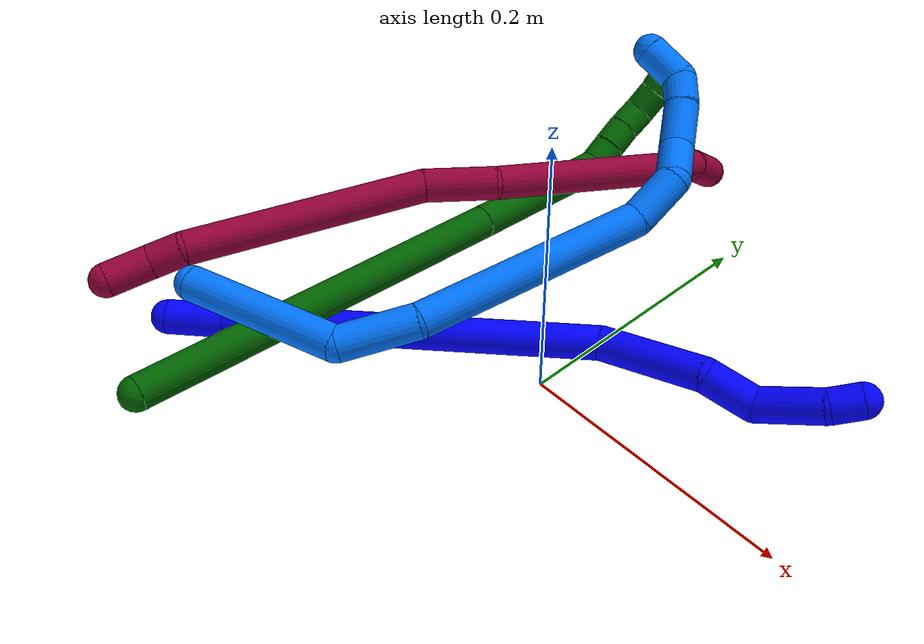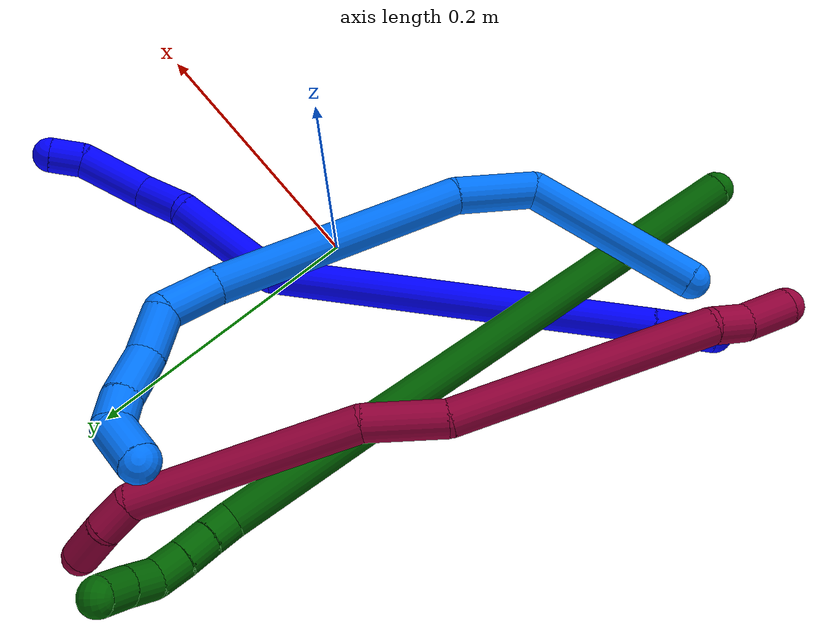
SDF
<sdf version="1.7">
 <world name="default">
  <model name="1">
   <static>0</static>
   <link name="1">
    <collision name="collision-cylinder-e_1_1_4">
     <pose>0.015883 0.01337 -0.003954 -1.85834 0.850367 -1.08979</pose>
     <geometry><cylinder><radius>0.0125</radius><length>0.04227</length></cylinder></geometry>
     <surface>
      <friction><ode><mu>1.16</mu><mu2>1.16</mu2><slip1>0</slip1><slip2>0</slip2></ode></friction>
      <contact><ode><kp>1e+06</kp><kd>1</kd><max_vel>0</max_vel><min_depth>0.001</min_depth></ode></contact>
     </surface>
    </collision>
    <visual name="visual-cylinder-e_1_1_4">
     <pose>0.015883 0.01337 -0.003954 -1.85834 0.850367 -1.08979</pose>
     <geometry><cylinder><radius>0.0125</radius><length>0.04227</length></cylinder></geometry>
     <material><ambient>0 0 1 1</ambient></material>
    </visual>
    <collision name="collision-cylinder-e_2_4_5">
     <pose>0.131391 0.112843 -0.034038 -1.86543 0.836222 -1.07959</pose>
     <geometry><cylinder><radius>0.0125</radius><length>0.268488</length></cylinder></geometry>
     <surface>
      <friction><ode><mu>1.16</mu><mu2>1.16</mu2><slip1>0</slip1><slip2>0</slip2></ode></friction>
      <contact><ode><kp>1e+06</kp><kd>1</kd><max_vel>0</max_vel><min_depth>0.001</min_depth></ode></contact>
     </surface>
    </collision>
    <visual name="visual-cylinder-e_2_4_5">
     <pose>0.131391 0.112843 -0.034038 -1.86543 0.836222 -1.07959</pose>
     <geometry><cylinder><radius>0.0125</radius><length>0.268488</length></cylinder></geometry>
     <material><ambient>0 0 1 1</ambient></material>
    </visual>
    <collision name="collision-cylinder-e_3_5_6">
     <pose>0.268556 0.211494 -0.055186 -1.19291 1.22556 -0.890714</pose>
     <geometry><cylinder><radius>0.0125</radius><length>0.079787</length></cylinder></geometry>
     <surface>
      <friction><ode><mu>1.16</mu><mu2>1.16</mu2><slip1>0</slip1><slip2>0</slip2></ode></friction>
      <contact><ode><kp>1e+06</kp><kd>1</kd><max_vel>0</max_vel><min_depth>0.001</min_depth></ode></contact>
     </surface>
    </collision>
    <visual name="visual-cylinder-e_3_5_6">
     <pose>0.268556 0.211494 -0.055186 -1.19291 1.22556 -0.890714</pose>
     <geometry><cylinder><radius>0.0125</radius><length>0.079787</length></cylinder></geometry>
     <material><ambient>0 0 1 1</ambient></material>
    </visual>
    <collision name="collision-cylinder-e_4_6_7">
     <pose>0.323774 0.227932 -0.055913 -2.54351 1.19831 -2.2935</pose>
     <geometry><cylinder><radius>0.0125</radius><length>0.03796</length></cylinder></geometry>
     <surface>
      <friction><ode><mu>1.16</mu><mu2>1.16</mu2><slip1>0</slip1><slip2>0</slip2></ode></friction>
      <contact><ode><kp>1e+06</kp><kd>1</kd><max_vel>0</max_vel><min_depth>0.001</min_depth></ode></contact>
     </surface>
    </collision>
    <visual name="visual-cylinder-e_4_6_7">
     <pose>0.323774 0.227932 -0.055913 -2.54351 1.19831 -2.2935</pose>
     <geometry><cylinder><radius>0.0125</radius><length>0.03796</length></cylinder></geometry>
     <material><ambient>0 0 1 1</ambient></material>
    </visual>
    <collision name="collision-cylinder-e_5_7_8">
     <pose>0.361275 0.24506 -0.056779 -1.22013 0.952658 -0.692277</pose>
     <geometry><cylinder><radius>0.0125</radius><length>0.048649</length></cylinder></geometry>
     <surface>
      <friction><ode><mu>1.16</mu><mu2>1.16</mu2><slip1>0</slip1><slip2>0</slip2></ode></friction>
      <contact><ode><kp>1e+06</kp><kd>1</kd><max_vel>0</max_vel><min_depth>0.001</min_depth></ode></contact>
     </surface>
    </collision>
    <visual name="visual-cylinder-e_5_7_8">
     <pose>0.361275 0.24506 -0.056779 -1.22013 0.952658 -0.692277</pose>
     <geometry><cylinder><radius>0.0125</radius><length>0.048649</length></cylinder></geometry>
     <material><ambient>0 0 1 1</ambient></material>
    </visual>
    <collision name="collision-cylinder-e_6_8_2">
     <pose>0.388425 0.267062 -0.051821 -1.55765 0.696239 -0.687853</pose>
     <geometry><cylinder><radius>0.0125</radius><length>0.022846</length></cylinder></geometry>
     <surface>
      <friction><ode><mu>1.16</mu><mu2>1.16</mu2><slip1>0</slip1><slip2>0</slip2></ode></friction>
      <contact><ode><kp>1e+06</kp><kd>1</kd><max_vel>0</max_vel><min_depth>0.001</min_depth></ode></contact>
     </surface>
    </collision>
    <visual name="visual-cylinder-e_6_8_2">
     <pose>0.388425 0.267062 -0.051821 -1.55765 0.696239 -0.687853</pose>
     <geometry><cylinder><radius>0.0125</radius><length>0.022846</length></cylinder></geometry>
     <material><ambient>0 0 1 1</ambient></material>
    </visual>
    <collision name="collision-sphere-2">
     <pose>0.395751 0.275826 -0.051706 0 -0 0</pose>
     <geometry><sphere><radius>0.0125</radius></sphere></geometry>
     <surface>
      <friction><ode><mu>1.16</mu><mu2>1.16</mu2><slip1>0</slip1><slip2>0</slip2></ode></friction>
      <contact><ode><kp>1e+06</kp><kd>1</kd><max_vel>0</max_vel><min_depth>0.001</min_depth></ode></contact>
     </surface>
    </collision>
    <visual name="visual-sphere-2">
     <pose>0.395751 0.275826 -0.051706 0 -0 0</pose>
     <geometry><sphere><radius>0.0125</radius></sphere></geometry>
     <material><ambient>0 0 1 1</ambient></material>
    </visual>
    <collision name="collision-sphere-4">
     <pose>0.031767 0.026741 -0.007908 0 -0 0</pose>
     <geometry><sphere><radius>0.0125</radius></sphere></geometry>
     <surface>
      <friction><ode><mu>1.16</mu><mu2>1.16</mu2><slip1>0</slip1><slip2>0</slip2></ode></friction>
      <contact><ode><kp>1e+06</kp><kd>1</kd><max_vel>0</max_vel><min_depth>0.001</min_depth></ode></contact>
     </surface>
    </collision>
    <visual name="visual-sphere-4">
     <pose>0.031767 0.026741 -0.007908 0 -0 0</pose>
     <geometry><sphere><radius>0.0125</radius></sphere></geometry>
     <material><ambient>0 0 1 1</ambient></material>
    </visual>
    <collision name="collision-sphere-1">
     <geometry><sphere><radius>0.0125</radius></sphere></geometry>
     <surface>
      <friction><ode><mu>1.16</mu><mu2>1.16</mu2><slip1>0</slip1><slip2>0</slip2></ode></friction>
      <contact><ode><kp>1e+06</kp><kd>1</kd><max_vel>0</max_vel><min_depth>0.001</min_depth></ode></contact>
     </surface>
    </collision>
    <visual name="visual-sphere-1">
     <geometry><sphere><radius>0.0125</radius></sphere></geometry>
     <material><ambient>0 0 1 1</ambient></material>
    </visual>
    <collision name="collision-sphere-8">
     <pose>0.381099 0.258298 -0.051936 0 -0 0</pose>
     <geometry><sphere><radius>0.0125</radius></sphere></geometry>
     <surface>
      <friction><ode><mu>1.16</mu><mu2>1.16</mu2><slip1>0</slip1><slip2>0</slip2></ode></friction>
      <contact><ode><kp>1e+06</kp><kd>1</kd><max_vel>0</max_vel><min_depth>0.001</min_depth></ode></contact>
     </surface>
    </collision>
    <visual name="visual-sphere-8">
     <pose>0.381099 0.258298 -0.051936 0 -0 0</pose>
     <geometry><sphere><radius>0.0125</radius></sphere></geometry>
     <material><ambient>0 0 1 1</ambient></material>
    </visual>
    <collision name="collision-sphere-5">
     <pose>0.231016 0.198946 -0.060167 0 -0 0</pose>
     <geometry><sphere><radius>0.0125</radius></sphere></geometry>
     <surface>
      <friction><ode><mu>1.16</mu><mu2>1.16</mu2><slip1>0</slip1><slip2>0</slip2></ode></friction>
      <contact><ode><kp>1e+06</kp><kd>1</kd><max_vel>0</max_vel><min_depth>0.001</min_depth></ode></contact>
     </surface>
    </collision>
    <visual name="visual-sphere-5">
     <pose>0.231016 0.198946 -0.060167 0 -0 0</pose>
     <geometry><sphere><radius>0.0125</radius></sphere></geometry>
     <material><ambient>0 0 1 1</ambient></material>
    </visual>
    <collision name="collision-sphere-6">
     <pose>0.306095 0.224043 -0.050204 0 -0 0</pose>
     <geometry><sphere><radius>0.0125</radius></sphere></geometry>
     <surface>
      <friction><ode><mu>1.16</mu><mu2>1.16</mu2><slip1>0</slip1><slip2>0</slip2></ode></friction>
      <contact><ode><kp>1e+06</kp><kd>1</kd><max_vel>0</max_vel><min_depth>0.001</min_depth></ode></contact>
     </surface>
    </collision>
    <visual name="visual-sphere-6">
     <pose>0.306095 0.224043 -0.050204 0 -0 0</pose>
     <geometry><sphere><radius>0.0125</radius></sphere></geometry>
     <material><ambient>0 0 1 1</ambient></material>
    </visual>
    <collision name="collision-sphere-7">
     <pose>0.341452 0.231821 -0.061621 0 -0 0</pose>
     <geometry><sphere><radius>0.0125</radius></sphere></geometry>
     <surface>
      <friction><ode><mu>1.16</mu><mu2>1.16</mu2><slip1>0</slip1><slip2>0</slip2></ode></friction>
      <contact><ode><kp>1e+06</kp><kd>1</kd><max_vel>0</max_vel><min_depth>0.001</min_depth></ode></contact>
     </surface>
    </collision>
    <visual name="visual-sphere-7">
     <pose>0.341452 0.231821 -0.061621 0 -0 0</pose>
     <geometry><sphere><radius>0.0125</radius></sphere></geometry>
     <material><ambient>0 0 1 1</ambient></material>
    </visual>
    <inertial>
     <pose>0.192232 0.148825 -0.039555 0 -0 0</pose>
     <mass>0.5</mass>
     <inertia>
      <ixx>-0.000422</ixx>
      <ixy>0</ixy>
      <ixz>0</ixz>
      <iyy>-0.000107</iyy>
      <iyz>0</iyz>
      <izz>-0.002343</izz>
     </inertia>
    </inertial>
   </link>
   <pose>-0.221634 -0.158278 0.011496 0.406388 0.100876 0.013294</pose>
  </model>
  <model name="6">
   <static>0</static>
   <link name="6">
    <collision name="collision-cylinder-e_1_1_4">
     <pose>0.006263 0.098255 -0.104368 -2.38636 0.043665 -0.109991</pose>
     <geometry><cylinder><radius>0.0125</radius><length>0.286956</length></cylinder></geometry>
     <surface>
      <friction><ode><mu>1.16</mu><mu2>1.16</mu2><slip1>0</slip1><slip2>0</slip2></ode></friction>
      <contact><ode><kp>1e+06</kp><kd>1</kd><max_vel>0</max_vel><min_depth>0.001</min_depth></ode></contact>
     </surface>
    </collision>
    <visual name="visual-cylinder-e_1_1_4">
     <pose>0.006263 0.098255 -0.104368 -2.38636 0.043665 -0.109991</pose>
     <geometry><cylinder><radius>0.0125</radius><length>0.286956</length></cylinder></geometry>
     <material><ambient>0 0.392157 0.003922 1</ambient></material>
    </visual>
    <collision name="collision-cylinder-e_2_4_5">
     <pose>0.014711 0.235374 -0.249393 -2.37873 0.038836 -0.096768</pose>
     <geometry><cylinder><radius>0.0125</radius><length>0.112574</length></cylinder></geometry>
     <surface>
      <friction><ode><mu>1.16</mu><mu2>1.16</mu2><slip1>0</slip1><slip2>0</slip2></ode></friction>
      <contact><ode><kp>1e+06</kp><kd>1</kd><max_vel>0</max_vel><min_depth>0.001</min_depth></ode></contact>
     </surface>
    </collision>
    <visual name="visual-cylinder-e_2_4_5">
     <pose>0.014711 0.235374 -0.249393 -2.37873 0.038836 -0.096768</pose>
     <geometry><cylinder><radius>0.0125</radius><length>0.112574</length></cylinder></geometry>
     <material><ambient>0 0.392157 0.003922 1</ambient></material>
    </visual>
    <collision name="collision-cylinder-e_3_5_6">
     <pose>0.020172 0.282915 -0.293861 -1.98464 0.33272 -0.503379</pose>
     <geometry><cylinder><radius>0.0125</radius><length>0.020052</length></cylinder></geometry>
     <surface>
      <friction><ode><mu>1.16</mu><mu2>1.16</mu2><slip1>0</slip1><slip2>0</slip2></ode></friction>
      <contact><ode><kp>1e+06</kp><kd>1</kd><max_vel>0</max_vel><min_depth>0.001</min_depth></ode></contact>
     </surface>
    </collision>
    <visual name="visual-cylinder-e_3_5_6">
     <pose>0.020172 0.282915 -0.293861 -1.98464 0.33272 -0.503379</pose>
     <geometry><cylinder><radius>0.0125</radius><length>0.020052</length></cylinder></geometry>
     <material><ambient>0 0.392157 0.003922 1</ambient></material>
    </visual>
    <collision name="collision-cylinder-e_4_6_7">
     <pose>0.026304 0.300331 -0.301709 -2.00352 0.288523 -0.446667</pose>
     <geometry><cylinder><radius>0.0125</radius><length>0.020084</length></cylinder></geometry>
     <surface>
      <friction><ode><mu>1.16</mu><mu2>1.16</mu2><slip1>0</slip1><slip2>0</slip2></ode></friction>
      <contact><ode><kp>1e+06</kp><kd>1</kd><max_vel>0</max_vel><min_depth>0.001</min_depth></ode></contact>
     </surface>
    </collision>
    <visual name="visual-cylinder-e_4_6_7">
     <pose>0.026304 0.300331 -0.301709 -2.00352 0.288523 -0.446667</pose>
     <geometry><cylinder><radius>0.0125</radius><length>0.020084</length></cylinder></geometry>
     <material><ambient>0 0.392157 0.003922 1</ambient></material>
    </visual>
    <collision name="collision-cylinder-e_5_7_8">
     <pose>0.032207 0.31754 -0.310385 -2.07192 0.30556 -0.508569</pose>
     <geometry><cylinder><radius>0.0125</radius><length>0.020252</length></cylinder></geometry>
     <surface>
      <friction><ode><mu>1.16</mu><mu2>1.16</mu2><slip1>0</slip1><slip2>0</slip2></ode></friction>
      <contact><ode><kp>1e+06</kp><kd>1</kd><max_vel>0</max_vel><min_depth>0.001</min_depth></ode></contact>
     </surface>
    </collision>
    <visual name="visual-cylinder-e_5_7_8">
     <pose>0.032207 0.31754 -0.310385 -2.07192 0.30556 -0.508569</pose>
     <geometry><cylinder><radius>0.0125</radius><length>0.020252</length></cylinder></geometry>
     <material><ambient>0 0.392157 0.003922 1</ambient></material>
    </visual>
    <collision name="collision-cylinder-e_6_8_9">
     <pose>0.042189 0.332641 -0.317903 -1.98032 0.764685 -1.09975</pose>
     <geometry><cylinder><radius>0.0125</radius><length>0.020036</length></cylinder></geometry>
     <surface>
      <friction><ode><mu>1.16</mu><mu2>1.16</mu2><slip1>0</slip1><slip2>0</slip2></ode></friction>
      <contact><ode><kp>1e+06</kp><kd>1</kd><max_vel>0</max_vel><min_depth>0.001</min_depth></ode></contact>
     </surface>
    </collision>
    <visual name="visual-cylinder-e_6_8_9">
     <pose>0.042189 0.332641 -0.317903 -1.98032 0.764685 -1.09975</pose>
     <geometry><cylinder><radius>0.0125</radius><length>0.020036</length></cylinder></geometry>
     <material><ambient>0 0.392157 0.003922 1</ambient></material>
    </visual>
    <collision name="collision-cylinder-e_7_9_2">
     <pose>0.056138 0.346242 -0.322423 -1.80209 0.77502 -0.951842</pose>
     <geometry><cylinder><radius>0.0125</radius><length>0.020045</length></cylinder></geometry>
     <surface>
      <friction><ode><mu>1.16</mu><mu2>1.16</mu2><slip1>0</slip1><slip2>0</slip2></ode></friction>
      <contact><ode><kp>1e+06</kp><kd>1</kd><max_vel>0</max_vel><min_depth>0.001</min_depth></ode></contact>
     </surface>
    </collision>
    <visual name="visual-cylinder-e_7_9_2">
     <pose>0.056138 0.346242 -0.322423 -1.80209 0.77502 -0.951842</pose>
     <geometry><cylinder><radius>0.0125</radius><length>0.020045</length></cylinder></geometry>
     <material><ambient>0 0.392157 0.003922 1</ambient></material>
    </visual>
    <collision name="collision-sphere-2">
     <pose>0.063151 0.353211 -0.324064 0 -0 0</pose>
     <geometry><sphere><radius>0.0125</radius></sphere></geometry>
     <surface>
      <friction><ode><mu>1.16</mu><mu2>1.16</mu2><slip1>0</slip1><slip2>0</slip2></ode></friction>
      <contact><ode><kp>1e+06</kp><kd>1</kd><max_vel>0</max_vel><min_depth>0.001</min_depth></ode></contact>
     </surface>
    </collision>
    <visual name="visual-sphere-2">
     <pose>0.063151 0.353211 -0.324064 0 -0 0</pose>
     <geometry><sphere><radius>0.0125</radius></sphere></geometry>
     <material><ambient>0 0.392157 0.003922 1</ambient></material>
    </visual>
    <collision name="collision-sphere-9">
     <pose>0.049125 0.339273 -0.320781 0 -0 0</pose>
     <geometry><sphere><radius>0.0125</radius></sphere></geometry>
     <surface>
      <friction><ode><mu>1.16</mu><mu2>1.16</mu2><slip1>0</slip1><slip2>0</slip2></ode></friction>
      <contact><ode><kp>1e+06</kp><kd>1</kd><max_vel>0</max_vel><min_depth>0.001</min_depth></ode></contact>
     </surface>
    </collision>
    <visual name="visual-sphere-9">
     <pose>0.049125 0.339273 -0.320781 0 -0 0</pose>
     <geometry><sphere><radius>0.0125</radius></sphere></geometry>
     <material><ambient>0 0.392157 0.003922 1</ambient></material>
    </visual>
    <collision name="collision-sphere-4">
     <pose>0.012526 0.196509 -0.208736 0 -0 0</pose>
     <geometry><sphere><radius>0.0125</radius></sphere></geometry>
     <surface>
      <friction><ode><mu>1.16</mu><mu2>1.16</mu2><slip1>0</slip1><slip2>0</slip2></ode></friction>
      <contact><ode><kp>1e+06</kp><kd>1</kd><max_vel>0</max_vel><min_depth>0.001</min_depth></ode></contact>
     </surface>
    </collision>
    <visual name="visual-sphere-4">
     <pose>0.012526 0.196509 -0.208736 0 -0 0</pose>
     <geometry><sphere><radius>0.0125</radius></sphere></geometry>
     <material><ambient>0 0.392157 0.003922 1</ambient></material>
    </visual>
    <collision name="collision-sphere-1">
     <geometry><sphere><radius>0.0125</radius></sphere></geometry>
     <surface>
      <friction><ode><mu>1.16</mu><mu2>1.16</mu2><slip1>0</slip1><slip2>0</slip2></ode></friction>
      <contact><ode><kp>1e+06</kp><kd>1</kd><max_vel>0</max_vel><min_depth>0.001</min_depth></ode></contact>
     </surface>
    </collision>
    <visual name="visual-sphere-1">
     <geometry><sphere><radius>0.0125</radius></sphere></geometry>
     <material><ambient>0 0.392157 0.003922 1</ambient></material>
    </visual>
    <collision name="collision-sphere-8">
     <pose>0.035253 0.32601 -0.315025 0 -0 0</pose>
     <geometry><sphere><radius>0.0125</radius></sphere></geometry>
     <surface>
      <friction><ode><mu>1.16</mu><mu2>1.16</mu2><slip1>0</slip1><slip2>0</slip2></ode></friction>
      <contact><ode><kp>1e+06</kp><kd>1</kd><max_vel>0</max_vel><min_depth>0.001</min_depth></ode></contact>
     </surface>
    </collision>
    <visual name="visual-sphere-8">
     <pose>0.035253 0.32601 -0.315025 0 -0 0</pose>
     <geometry><sphere><radius>0.0125</radius></sphere></geometry>
     <material><ambient>0 0.392157 0.003922 1</ambient></material>
    </visual>
    <collision name="collision-sphere-5">
     <pose>0.016897 0.274238 -0.29005 0 -0 0</pose>
     <geometry><sphere><radius>0.0125</radius></sphere></geometry>
     <surface>
      <friction><ode><mu>1.16</mu><mu2>1.16</mu2><slip1>0</slip1><slip2>0</slip2></ode></friction>
      <contact><ode><kp>1e+06</kp><kd>1</kd><max_vel>0</max_vel><min_depth>0.001</min_depth></ode></contact>
     </surface>
    </collision>
    <visual name="visual-sphere-5">
     <pose>0.016897 0.274238 -0.29005 0 -0 0</pose>
     <geometry><sphere><radius>0.0125</radius></sphere></geometry>
     <material><ambient>0 0.392157 0.003922 1</ambient></material>
    </visual>
    <collision name="collision-sphere-6">
     <pose>0.023446 0.291591 -0.297672 0 -0 0</pose>
     <geometry><sphere><radius>0.0125</radius></sphere></geometry>
     <surface>
      <friction><ode><mu>1.16</mu><mu2>1.16</mu2><slip1>0</slip1><slip2>0</slip2></ode></friction>
      <contact><ode><kp>1e+06</kp><kd>1</kd><max_vel>0</max_vel><min_depth>0.001</min_depth></ode></contact>
     </surface>
    </collision>
    <visual name="visual-sphere-6">
     <pose>0.023446 0.291591 -0.297672 0 -0 0</pose>
     <geometry><sphere><radius>0.0125</radius></sphere></geometry>
     <material><ambient>0 0.392157 0.003922 1</ambient></material>
    </visual>
    <collision name="collision-sphere-7">
     <pose>0.029161 0.309071 -0.305746 0 -0 0</pose>
     <geometry><sphere><radius>0.0125</radius></sphere></geometry>
     <surface>
      <friction><ode><mu>1.16</mu><mu2>1.16</mu2><slip1>0</slip1><slip2>0</slip2></ode></friction>
      <contact><ode><kp>1e+06</kp><kd>1</kd><max_vel>0</max_vel><min_depth>0.001</min_depth></ode></contact>
     </surface>
    </collision>
    <visual name="visual-sphere-7">
     <pose>0.029161 0.309071 -0.305746 0 -0 0</pose>
     <geometry><sphere><radius>0.0125</radius></sphere></geometry>
     <material><ambient>0 0.392157 0.003922 1</ambient></material>
    </visual>
    <inertial>
     <pose>0.014018 0.172866 -0.17819 0 -0 0</pose>
     <mass>0.5</mass>
     <inertia>
      <ixx>0.001866</ixx>
      <ixy>0</ixy>
      <ixz>0</ixz>
      <iyy>-0.00172</iyy>
      <iyz>0</iyz>
      <izz>-0.001567</izz>
     </inertia>
    </inertial>
   </link>
   <pose>-0.148015 -0.224973 0.036027 0.757448 -0.987764 -0.008621</pose>
  </model>
  <model name="8">
   <static>0</static>
   <link name="8">
    <collision name="collision-cylinder-e_1_1_4">
     <pose>-0.000504 0.01648 -0.000401 -1.59514 -0.030545 0.031298</pose>
     <geometry><cylinder><radius>0.0125</radius><length>0.032984</length></cylinder></geometry>
     <surface>
      <friction><ode><mu>1.16</mu><mu2>1.16</mu2><slip1>0</slip1><slip2>0</slip2></ode></friction>
      <contact><ode><kp>1e+06</kp><kd>1</kd><max_vel>0</max_vel><min_depth>0.001</min_depth></ode></contact>
     </surface>
    </collision>
    <visual name="visual-cylinder-e_1_1_4">
     <pose>-0.000504 0.01648 -0.000401 -1.59514 -0.030545 0.031298</pose>
     <geometry><cylinder><radius>0.0125</radius><length>0.032984</length></cylinder></geometry>
     <material><ambient>0.584314 0 0.227451 1</ambient></material>
    </visual>
    <collision name="collision-cylinder-e_2_4_5">
     <pose>0.000678 0.045056 0.001329 -1.39643 0.136365 -0.114496</pose>
     <geometry><cylinder><radius>0.0125</radius><length>0.024797</length></cylinder></geometry>
     <surface>
      <friction><ode><mu>1.16</mu><mu2>1.16</mu2><slip1>0</slip1><slip2>0</slip2></ode></friction>
      <contact><ode><kp>1e+06</kp><kd>1</kd><max_vel>0</max_vel><min_depth>0.001</min_depth></ode></contact>
     </surface>
    </collision>
    <visual name="visual-cylinder-e_2_4_5">
     <pose>0.000678 0.045056 0.001329 -1.39643 0.136365 -0.114496</pose>
     <geometry><cylinder><radius>0.0125</radius><length>0.024797</length></cylinder></geometry>
     <material><ambient>0.584314 0 0.227451 1</ambient></material>
    </visual>
    <collision name="collision-cylinder-e_3_5_6">
     <pose>0.00737 0.146112 -0.008899 -1.70884 0.055686 -0.063952</pose>
     <geometry><cylinder><radius>0.0125</radius><length>0.179904</length></cylinder></geometry>
     <surface>
      <friction><ode><mu>1.16</mu><mu2>1.16</mu2><slip1>0</slip1><slip2>0</slip2></ode></friction>
      <contact><ode><kp>1e+06</kp><kd>1</kd><max_vel>0</max_vel><min_depth>0.001</min_depth></ode></contact>
     </surface>
    </collision>
    <visual name="visual-cylinder-e_3_5_6">
     <pose>0.00737 0.146112 -0.008899 -1.70884 0.055686 -0.063952</pose>
     <geometry><cylinder><radius>0.0125</radius><length>0.179904</length></cylinder></geometry>
     <material><ambient>0.584314 0 0.227451 1</ambient></material>
    </visual>
    <collision name="collision-cylinder-e_4_6_7">
     <pose>0.02186 0.260423 -0.024063 -1.68098 0.35593 -0.396453</pose>
     <geometry><cylinder><radius>0.0125</radius><length>0.054427</length></cylinder></geometry>
     <surface>
      <friction><ode><mu>1.16</mu><mu2>1.16</mu2><slip1>0</slip1><slip2>0</slip2></ode></friction>
      <contact><ode><kp>1e+06</kp><kd>1</kd><max_vel>0</max_vel><min_depth>0.001</min_depth></ode></contact>
     </surface>
    </collision>
    <visual name="visual-cylinder-e_4_6_7">
     <pose>0.02186 0.260423 -0.024063 -1.68098 0.35593 -0.396453</pose>
     <geometry><cylinder><radius>0.0125</radius><length>0.054427</length></cylinder></geometry>
     <material><ambient>0.584314 0 0.227451 1</ambient></material>
    </visual>
    <collision name="collision-cylinder-e_5_7_8">
     <pose>0.041839 0.358419 -0.048956 -1.86599 0.137375 -0.18512</pose>
     <geometry><cylinder><radius>0.0125</radius><length>0.153297</length></cylinder></geometry>
     <surface>
      <friction><ode><mu>1.16</mu><mu2>1.16</mu2><slip1>0</slip1><slip2>0</slip2></ode></friction>
      <contact><ode><kp>1e+06</kp><kd>1</kd><max_vel>0</max_vel><min_depth>0.001</min_depth></ode></contact>
     </surface>
    </collision>
    <visual name="visual-cylinder-e_5_7_8">
     <pose>0.041839 0.358419 -0.048956 -1.86599 0.137375 -0.18512</pose>
     <geometry><cylinder><radius>0.0125</radius><length>0.153297</length></cylinder></geometry>
     <material><ambient>0.584314 0 0.227451 1</ambient></material>
    </visual>
    <collision name="collision-cylinder-e_6_8_9">
     <pose>0.049862 0.441025 -0.078011 -2.18089 -0.200711 0.381794</pose>
     <geometry><cylinder><radius>0.0125</radius><length>0.024813</length></cylinder></geometry>
     <surface>
      <friction><ode><mu>1.16</mu><mu2>1.16</mu2><slip1>0</slip1><slip2>0</slip2></ode></friction>
      <contact><ode><kp>1e+06</kp><kd>1</kd><max_vel>0</max_vel><min_depth>0.001</min_depth></ode></contact>
     </surface>
    </collision>
    <visual name="visual-cylinder-e_6_8_9">
     <pose>0.049862 0.441025 -0.078011 -2.18089 -0.200711 0.381794</pose>
     <geometry><cylinder><radius>0.0125</radius><length>0.024813</length></cylinder></geometry>
     <material><ambient>0.584314 0 0.227451 1</ambient></material>
    </visual>
    <collision name="collision-cylinder-e_7_9_2">
     <pose>0.046346 0.460518 -0.096369 -2.44502 -0.070061 0.192441</pose>
     <geometry><cylinder><radius>0.0125</radius><length>0.029778</length></cylinder></geometry>
     <surface>
      <friction><ode><mu>1.16</mu><mu2>1.16</mu2><slip1>0</slip1><slip2>0</slip2></ode></friction>
      <contact><ode><kp>1e+06</kp><kd>1</kd><max_vel>0</max_vel><min_depth>0.001</min_depth></ode></contact>
     </surface>
    </collision>
    <visual name="visual-cylinder-e_7_9_2">
     <pose>0.046346 0.460518 -0.096369 -2.44502 -0.070061 0.192441</pose>
     <geometry><cylinder><radius>0.0125</radius><length>0.029778</length></cylinder></geometry>
     <material><ambient>0.584314 0 0.227451 1</ambient></material>
    </visual>
    <collision name="collision-sphere-2">
     <pose>0.045304 0.470047 -0.107761 0 -0 0</pose>
     <geometry><sphere><radius>0.0125</radius></sphere></geometry>
     <surface>
      <friction><ode><mu>1.16</mu><mu2>1.16</mu2><slip1>0</slip1><slip2>0</slip2></ode></friction>
      <contact><ode><kp>1e+06</kp><kd>1</kd><max_vel>0</max_vel><min_depth>0.001</min_depth></ode></contact>
     </surface>
    </collision>
    <visual name="visual-sphere-2">
     <pose>0.045304 0.470047 -0.107761 0 -0 0</pose>
     <geometry><sphere><radius>0.0125</radius></sphere></geometry>
     <material><ambient>0.584314 0 0.227451 1</ambient></material>
    </visual>
    <collision name="collision-sphere-9">
     <pose>0.047389 0.450989 -0.084976 0 -0 0</pose>
     <geometry><sphere><radius>0.0125</radius></sphere></geometry>
     <surface>
      <friction><ode><mu>1.16</mu><mu2>1.16</mu2><slip1>0</slip1><slip2>0</slip2></ode></friction>
      <contact><ode><kp>1e+06</kp><kd>1</kd><max_vel>0</max_vel><min_depth>0.001</min_depth></ode></contact>
     </surface>
    </collision>
    <visual name="visual-sphere-9">
     <pose>0.047389 0.450989 -0.084976 0 -0 0</pose>
     <geometry><sphere><radius>0.0125</radius></sphere></geometry>
     <material><ambient>0.584314 0 0.227451 1</ambient></material>
    </visual>
    <collision name="collision-sphere-4">
     <pose>-0.001007 0.032959 -0.000802 0 -0 0</pose>
     <geometry><sphere><radius>0.0125</radius></sphere></geometry>
     <surface>
      <friction><ode><mu>1.16</mu><mu2>1.16</mu2><slip1>0</slip1><slip2>0</slip2></ode></friction>
      <contact><ode><kp>1e+06</kp><kd>1</kd><max_vel>0</max_vel><min_depth>0.001</min_depth></ode></contact>
     </surface>
    </collision>
    <visual name="visual-sphere-4">
     <pose>-0.001007 0.032959 -0.000802 0 -0 0</pose>
     <geometry><sphere><radius>0.0125</radius></sphere></geometry>
     <material><ambient>0.584314 0 0.227451 1</ambient></material>
    </visual>
    <collision name="collision-sphere-1">
     <geometry><sphere><radius>0.0125</radius></sphere></geometry>
     <surface>
      <friction><ode><mu>1.16</mu><mu2>1.16</mu2><slip1>0</slip1><slip2>0</slip2></ode></friction>
      <contact><ode><kp>1e+06</kp><kd>1</kd><max_vel>0</max_vel><min_depth>0.001</min_depth></ode></contact>
     </surface>
    </collision>
    <visual name="visual-sphere-1">
     <geometry><sphere><radius>0.0125</radius></sphere></geometry>
     <material><ambient>0.584314 0 0.227451 1</ambient></material>
    </visual>
    <collision name="collision-sphere-8">
     <pose>0.052335 0.431061 -0.071045 0 -0 0</pose>
     <geometry><sphere><radius>0.0125</radius></sphere></geometry>
     <surface>
      <friction><ode><mu>1.16</mu><mu2>1.16</mu2><slip1>0</slip1><slip2>0</slip2></ode></friction>
      <contact><ode><kp>1e+06</kp><kd>1</kd><max_vel>0</max_vel><min_depth>0.001</min_depth></ode></contact>
     </surface>
    </collision>
    <visual name="visual-sphere-8">
     <pose>0.052335 0.431061 -0.071045 0 -0 0</pose>
     <geometry><sphere><radius>0.0125</radius></sphere></geometry>
     <material><ambient>0.584314 0 0.227451 1</ambient></material>
    </visual>
    <collision name="collision-sphere-5">
     <pose>0.002364 0.057154 0.00346 0 -0 0</pose>
     <geometry><sphere><radius>0.0125</radius></sphere></geometry>
     <surface>
      <friction><ode><mu>1.16</mu><mu2>1.16</mu2><slip1>0</slip1><slip2>0</slip2></ode></friction>
      <contact><ode><kp>1e+06</kp><kd>1</kd><max_vel>0</max_vel><min_depth>0.001</min_depth></ode></contact>
     </surface>
    </collision>
    <visual name="visual-sphere-5">
     <pose>0.002364 0.057154 0.00346 0 -0 0</pose>
     <geometry><sphere><radius>0.0125</radius></sphere></geometry>
     <material><ambient>0.584314 0 0.227451 1</ambient></material>
    </visual>
    <collision name="collision-sphere-6">
     <pose>0.012377 0.23507 -0.021258 0 -0 0</pose>
     <geometry><sphere><radius>0.0125</radius></sphere></geometry>
     <surface>
      <friction><ode><mu>1.16</mu><mu2>1.16</mu2><slip1>0</slip1><slip2>0</slip2></ode></friction>
      <contact><ode><kp>1e+06</kp><kd>1</kd><max_vel>0</max_vel><min_depth>0.001</min_depth></ode></contact>
     </surface>
    </collision>
    <visual name="visual-sphere-6">
     <pose>0.012377 0.23507 -0.021258 0 -0 0</pose>
     <geometry><sphere><radius>0.0125</radius></sphere></geometry>
     <material><ambient>0.584314 0 0.227451 1</ambient></material>
    </visual>
    <collision name="collision-sphere-7">
     <pose>0.031342 0.285776 -0.026868 0 -0 0</pose>
     <geometry><sphere><radius>0.0125</radius></sphere></geometry>
     <surface>
      <friction><ode><mu>1.16</mu><mu2>1.16</mu2><slip1>0</slip1><slip2>0</slip2></ode></friction>
      <contact><ode><kp>1e+06</kp><kd>1</kd><max_vel>0</max_vel><min_depth>0.001</min_depth></ode></contact>
     </surface>
    </collision>
    <visual name="visual-sphere-7">
     <pose>0.031342 0.285776 -0.026868 0 -0 0</pose>
     <geometry><sphere><radius>0.0125</radius></sphere></geometry>
     <material><ambient>0.584314 0 0.227451 1</ambient></material>
    </visual>
    <inertial>
     <pose>0.023094 0.243443 -0.030402 0 -0 0</pose>
     <mass>0.5</mass>
     <inertia>
      <ixx>0.000726</ixx>
      <ixy>0</ixy>
      <ixz>0</ixz>
      <iyy>-0.000204</iyy>
      <iyz>0</iyz>
      <izz>-0.000885</izz>
     </inertia>
    </inertial>
   </link>
   <pose>-0.239798 -0.189641 0.053361 0.162334 0.221454 -0.28412</pose>
  </model>
  <model name="14">
   <static>0</static>
   <link name="14">
    <collision name="collision-cylinder-e_1_1_4">
     <pose>0.05656 0.013689 -0.013101 -2.33425 1.24753 -2.07026</pose>
     <geometry><cylinder><radius>0.0125</radius><length>0.1193</length></cylinder></geometry>
     <surface>
      <friction><ode><mu>1.16</mu><mu2>1.16</mu2><slip1>0</slip1><slip2>0</slip2></ode></friction>
      <contact><ode><kp>1e+06</kp><kd>1</kd><max_vel>0</max_vel><min_depth>0.001</min_depth></ode></contact>
     </surface>
    </collision>
    <visual name="visual-cylinder-e_1_1_4">
     <pose>0.05656 0.013689 -0.013101 -2.33425 1.24753 -2.07026</pose>
     <geometry><cylinder><radius>0.0125</radius><length>0.1193</length></cylinder></geometry>
     <material><ambient>0 0.462745 1 1</ambient></material>
    </visual>
    <collision name="collision-cylinder-e_2_4_5">
     <pose>0.128491 0.050576 -0.027718 -1.63601 0.584209 -0.621193</pose>
     <geometry><cylinder><radius>0.0125</radius><length>0.055737</length></cylinder></geometry>
     <surface>
      <friction><ode><mu>1.16</mu><mu2>1.16</mu2><slip1>0</slip1><slip2>0</slip2></ode></friction>
      <contact><ode><kp>1e+06</kp><kd>1</kd><max_vel>0</max_vel><min_depth>0.001</min_depth></ode></contact>
     </surface>
    </collision>
    <visual name="visual-cylinder-e_2_4_5">
     <pose>0.128491 0.050576 -0.027718 -1.63601 0.584209 -0.621193</pose>
     <geometry><cylinder><radius>0.0125</radius><length>0.055737</length></cylinder></geometry>
     <material><ambient>0 0.462745 1 1</ambient></material>
    </visual>
    <collision name="collision-cylinder-e_3_5_6">
     <pose>0.169186 0.154107 -0.035196 -1.64489 0.30459 -0.327634</pose>
     <geometry><cylinder><radius>0.0125</radius><length>0.168883</length></cylinder></geometry>
     <surface>
      <friction><ode><mu>1.16</mu><mu2>1.16</mu2><slip1>0</slip1><slip2>0</slip2></ode></friction>
      <contact><ode><kp>1e+06</kp><kd>1</kd><max_vel>0</max_vel><min_depth>0.001</min_depth></ode></contact>
     </surface>
    </collision>
    <visual name="visual-cylinder-e_3_5_6">
     <pose>0.169186 0.154107 -0.035196 -1.64489 0.30459 -0.327634</pose>
     <geometry><cylinder><radius>0.0125</radius><length>0.168883</length></cylinder></geometry>
     <material><ambient>0 0.462745 1 1</ambient></material>
    </visual>
    <collision name="collision-cylinder-e_4_6_7">
     <pose>0.196953 0.253155 -0.036167 -1.31013 0.125463 -0.096436</pose>
     <geometry><cylinder><radius>0.0125</radius><length>0.039044</length></cylinder></geometry>
     <surface>
      <friction><ode><mu>1.16</mu><mu2>1.16</mu2><slip1>0</slip1><slip2>0</slip2></ode></friction>
      <contact><ode><kp>1e+06</kp><kd>1</kd><max_vel>0</max_vel><min_depth>0.001</min_depth></ode></contact>
     </surface>
    </collision>
    <visual name="visual-cylinder-e_4_6_7">
     <pose>0.196953 0.253155 -0.036167 -1.31013 0.125463 -0.096436</pose>
     <geometry><cylinder><radius>0.0125</radius><length>0.039044</length></cylinder></geometry>
     <material><ambient>0 0.462745 1 1</ambient></material>
    </visual>
    <collision name="collision-cylinder-e_5_7_8">
     <pose>0.191048 0.285037 -0.028952 -1.40353 -0.558655 0.475733</pose>
     <geometry><cylinder><radius>0.0125</radius><length>0.031498</length></cylinder></geometry>
     <surface>
      <friction><ode><mu>1.16</mu><mu2>1.16</mu2><slip1>0</slip1><slip2>0</slip2></ode></friction>
      <contact><ode><kp>1e+06</kp><kd>1</kd><max_vel>0</max_vel><min_depth>0.001</min_depth></ode></contact>
     </surface>
    </collision>
    <visual name="visual-cylinder-e_5_7_8">
     <pose>0.191048 0.285037 -0.028952 -1.40353 -0.558655 0.475733</pose>
     <geometry><cylinder><radius>0.0125</radius><length>0.031498</length></cylinder></geometry>
     <material><ambient>0 0.462745 1 1</ambient></material>
    </visual>
    <collision name="collision-cylinder-e_6_8_9">
     <pose>0.176015 0.311804 -0.018774 -1.04155 -0.401333 0.232291</pose>
     <geometry><cylinder><radius>0.0125</radius><length>0.034227</length></cylinder></geometry>
     <surface>
      <friction><ode><mu>1.16</mu><mu2>1.16</mu2><slip1>0</slip1><slip2>0</slip2></ode></friction>
      <contact><ode><kp>1e+06</kp><kd>1</kd><max_vel>0</max_vel><min_depth>0.001</min_depth></ode></contact>
     </surface>
    </collision>
    <visual name="visual-cylinder-e_6_8_9">
     <pose>0.176015 0.311804 -0.018774 -1.04155 -0.401333 0.232291</pose>
     <geometry><cylinder><radius>0.0125</radius><length>0.034227</length></cylinder></geometry>
     <material><ambient>0 0.462745 1 1</ambient></material>
    </visual>
    <collision name="collision-cylinder-e_7_9_10">
     <pose>0.163606 0.33272 -0.005535 -0.945287 -0.565073 0.29471</pose>
     <geometry><cylinder><radius>0.0125</radius><length>0.021376</length></cylinder></geometry>
     <surface>
      <friction><ode><mu>1.16</mu><mu2>1.16</mu2><slip1>0</slip1><slip2>0</slip2></ode></friction>
      <contact><ode><kp>1e+06</kp><kd>1</kd><max_vel>0</max_vel><min_depth>0.001</min_depth></ode></contact>
     </surface>
    </collision>
    <visual name="visual-cylinder-e_7_9_10">
     <pose>0.163606 0.33272 -0.005535 -0.945287 -0.565073 0.29471</pose>
     <geometry><cylinder><radius>0.0125</radius><length>0.021376</length></cylinder></geometry>
     <material><ambient>0 0.462745 1 1</ambient></material>
    </visual>
    <collision name="collision-cylinder-e_8_10_2">
     <pose>0.145227 0.341227 0.00765 -0.14949 -1.00771 0.082524</pose>
     <geometry><cylinder><radius>0.0125</radius><length>0.029935</length></cylinder></geometry>
     <surface>
      <friction><ode><mu>1.16</mu><mu2>1.16</mu2><slip1>0</slip1><slip2>0</slip2></ode></friction>
      <contact><ode><kp>1e+06</kp><kd>1</kd><max_vel>0</max_vel><min_depth>0.001</min_depth></ode></contact>
     </surface>
    </collision>
    <visual name="visual-cylinder-e_8_10_2">
     <pose>0.145227 0.341227 0.00765 -0.14949 -1.00771 0.082524</pose>
     <geometry><cylinder><radius>0.0125</radius><length>0.029935</length></cylinder></geometry>
     <material><ambient>0 0.462745 1 1</ambient></material>
    </visual>
    <collision name="collision-sphere-2">
     <pose>0.13257 0.342417 0.015551 0 -0 0</pose>
     <geometry><sphere><radius>0.0125</radius></sphere></geometry>
     <surface>
      <friction><ode><mu>1.16</mu><mu2>1.16</mu2><slip1>0</slip1><slip2>0</slip2></ode></friction>
      <contact><ode><kp>1e+06</kp><kd>1</kd><max_vel>0</max_vel><min_depth>0.001</min_depth></ode></contact>
     </surface>
    </collision>
    <visual name="visual-sphere-2">
     <pose>0.13257 0.342417 0.015551 0 -0 0</pose>
     <geometry><sphere><radius>0.0125</radius></sphere></geometry>
     <material><ambient>0 0.462745 1 1</ambient></material>
    </visual>
    <collision name="collision-sphere-10">
     <pose>0.157883 0.340037 -0.00025 0 -0 0</pose>
     <geometry><sphere><radius>0.0125</radius></sphere></geometry>
     <surface>
      <friction><ode><mu>1.16</mu><mu2>1.16</mu2><slip1>0</slip1><slip2>0</slip2></ode></friction>
      <contact><ode><kp>1e+06</kp><kd>1</kd><max_vel>0</max_vel><min_depth>0.001</min_depth></ode></contact>
     </surface>
    </collision>
    <visual name="visual-sphere-10">
     <pose>0.157883 0.340037 -0.00025 0 -0 0</pose>
     <geometry><sphere><radius>0.0125</radius></sphere></geometry>
     <material><ambient>0 0.462745 1 1</ambient></material>
    </visual>
    <collision name="collision-sphere-9">
     <pose>0.16933 0.325402 -0.01082 0 -0 0</pose>
     <geometry><sphere><radius>0.0125</radius></sphere></geometry>
     <surface>
      <friction><ode><mu>1.16</mu><mu2>1.16</mu2><slip1>0</slip1><slip2>0</slip2></ode></friction>
      <contact><ode><kp>1e+06</kp><kd>1</kd><max_vel>0</max_vel><min_depth>0.001</min_depth></ode></contact>
     </surface>
    </collision>
    <visual name="visual-sphere-9">
     <pose>0.16933 0.325402 -0.01082 0 -0 0</pose>
     <geometry><sphere><radius>0.0125</radius></sphere></geometry>
     <material><ambient>0 0.462745 1 1</ambient></material>
    </visual>
    <collision name="collision-sphere-4">
     <pose>0.11312 0.027379 -0.026203 0 -0 0</pose>
     <geometry><sphere><radius>0.0125</radius></sphere></geometry>
     <surface>
      <friction><ode><mu>1.16</mu><mu2>1.16</mu2><slip1>0</slip1><slip2>0</slip2></ode></friction>
      <contact><ode><kp>1e+06</kp><kd>1</kd><max_vel>0</max_vel><min_depth>0.001</min_depth></ode></contact>
     </surface>
    </collision>
    <visual name="visual-sphere-4">
     <pose>0.11312 0.027379 -0.026203 0 -0 0</pose>
     <geometry><sphere><radius>0.0125</radius></sphere></geometry>
     <material><ambient>0 0.462745 1 1</ambient></material>
    </visual>
    <collision name="collision-sphere-1">
     <geometry><sphere><radius>0.0125</radius></sphere></geometry>
     <surface>
      <friction><ode><mu>1.16</mu><mu2>1.16</mu2><slip1>0</slip1><slip2>0</slip2></ode></friction>
      <contact><ode><kp>1e+06</kp><kd>1</kd><max_vel>0</max_vel><min_depth>0.001</min_depth></ode></contact>
     </surface>
    </collision>
    <visual name="visual-sphere-1">
     <geometry><sphere><radius>0.0125</radius></sphere></geometry>
     <material><ambient>0 0.462745 1 1</ambient></material>
    </visual>
    <collision name="collision-sphere-8">
     <pose>0.1827 0.298205 -0.026728 0 -0 0</pose>
     <geometry><sphere><radius>0.0125</radius></sphere></geometry>
     <surface>
      <friction><ode><mu>1.16</mu><mu2>1.16</mu2><slip1>0</slip1><slip2>0</slip2></ode></friction>
      <contact><ode><kp>1e+06</kp><kd>1</kd><max_vel>0</max_vel><min_depth>0.001</min_depth></ode></contact>
     </surface>
    </collision>
    <visual name="visual-sphere-8">
     <pose>0.1827 0.298205 -0.026728 0 -0 0</pose>
     <geometry><sphere><radius>0.0125</radius></sphere></geometry>
     <material><ambient>0 0.462745 1 1</ambient></material>
    </visual>
    <collision name="collision-sphere-5">
     <pose>0.143862 0.073773 -0.029233 0 -0 0</pose>
     <geometry><sphere><radius>0.0125</radius></sphere></geometry>
     <surface>
      <friction><ode><mu>1.16</mu><mu2>1.16</mu2><slip1>0</slip1><slip2>0</slip2></ode></friction>
      <contact><ode><kp>1e+06</kp><kd>1</kd><max_vel>0</max_vel><min_depth>0.001</min_depth></ode></contact>
     </surface>
    </collision>
    <visual name="visual-sphere-5">
     <pose>0.143862 0.073773 -0.029233 0 -0 0</pose>
     <geometry><sphere><radius>0.0125</radius></sphere></geometry>
     <material><ambient>0 0.462745 1 1</ambient></material>
    </visual>
    <collision name="collision-sphere-6">
     <pose>0.19451 0.234441 -0.041158 0 -0 0</pose>
     <geometry><sphere><radius>0.0125</radius></sphere></geometry>
     <surface>
      <friction><ode><mu>1.16</mu><mu2>1.16</mu2><slip1>0</slip1><slip2>0</slip2></ode></friction>
      <contact><ode><kp>1e+06</kp><kd>1</kd><max_vel>0</max_vel><min_depth>0.001</min_depth></ode></contact>
     </surface>
    </collision>
    <visual name="visual-sphere-6">
     <pose>0.19451 0.234441 -0.041158 0 -0 0</pose>
     <geometry><sphere><radius>0.0125</radius></sphere></geometry>
     <material><ambient>0 0.462745 1 1</ambient></material>
    </visual>
    <collision name="collision-sphere-7">
     <pose>0.199396 0.271869 -0.031175 0 -0 0</pose>
     <geometry><sphere><radius>0.0125</radius></sphere></geometry>
     <surface>
      <friction><ode><mu>1.16</mu><mu2>1.16</mu2><slip1>0</slip1><slip2>0</slip2></ode></friction>
      <contact><ode><kp>1e+06</kp><kd>1</kd><max_vel>0</max_vel><min_depth>0.001</min_depth></ode></contact>
     </surface>
    </collision>
    <visual name="visual-sphere-7">
     <pose>0.199396 0.271869 -0.031175 0 -0 0</pose>
     <geometry><sphere><radius>0.0125</radius></sphere></geometry>
     <material><ambient>0 0.462745 1 1</ambient></material>
    </visual>
    <inertial>
     <pose>0.140117 0.154679 -0.023816 0 -0 0</pose>
     <mass>0.5</mass>
     <inertia>
      <ixx>0.000213</ixx>
      <ixy>0</ixy>
      <ixz>0</ixz>
      <iyy>1.7e-05</iyy>
      <iyz>0</iyz>
      <izz>-0.000712</izz>
     </inertia>
    </inertial>
   </link>
   <pose>-0.188078 -0.15156 0.061318 0.144294 -0.19419 0.041438</pose>
  </model>
 </world>
</sdf>
